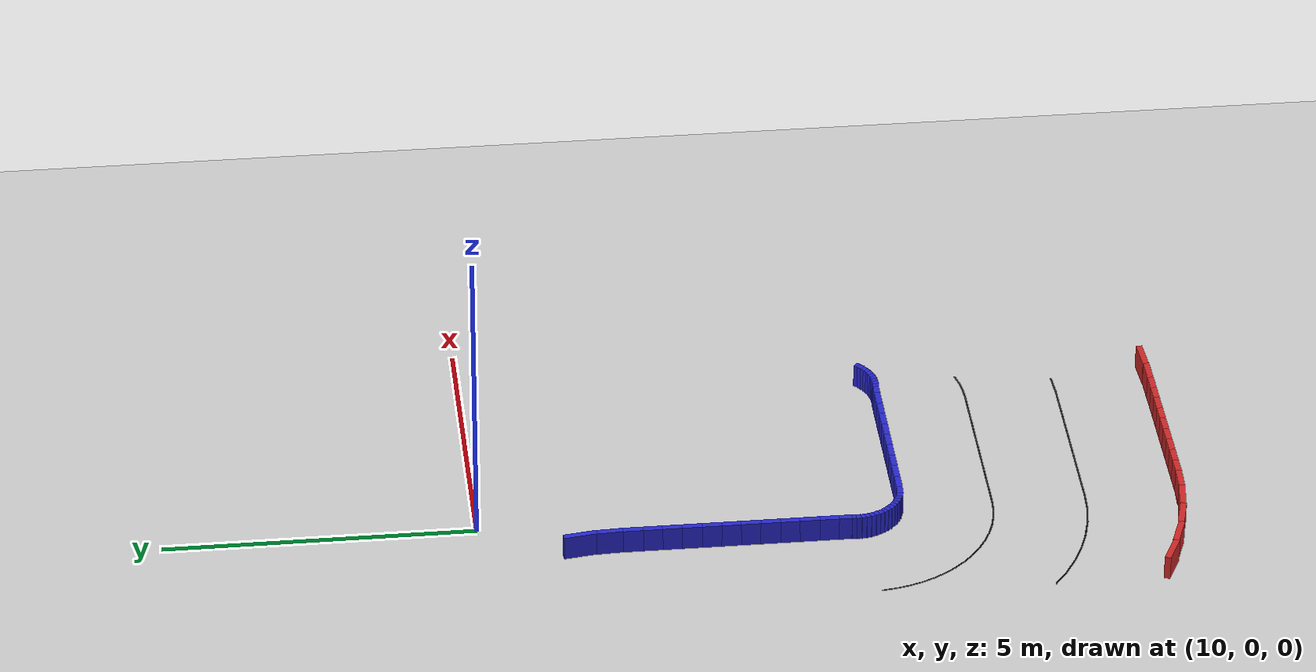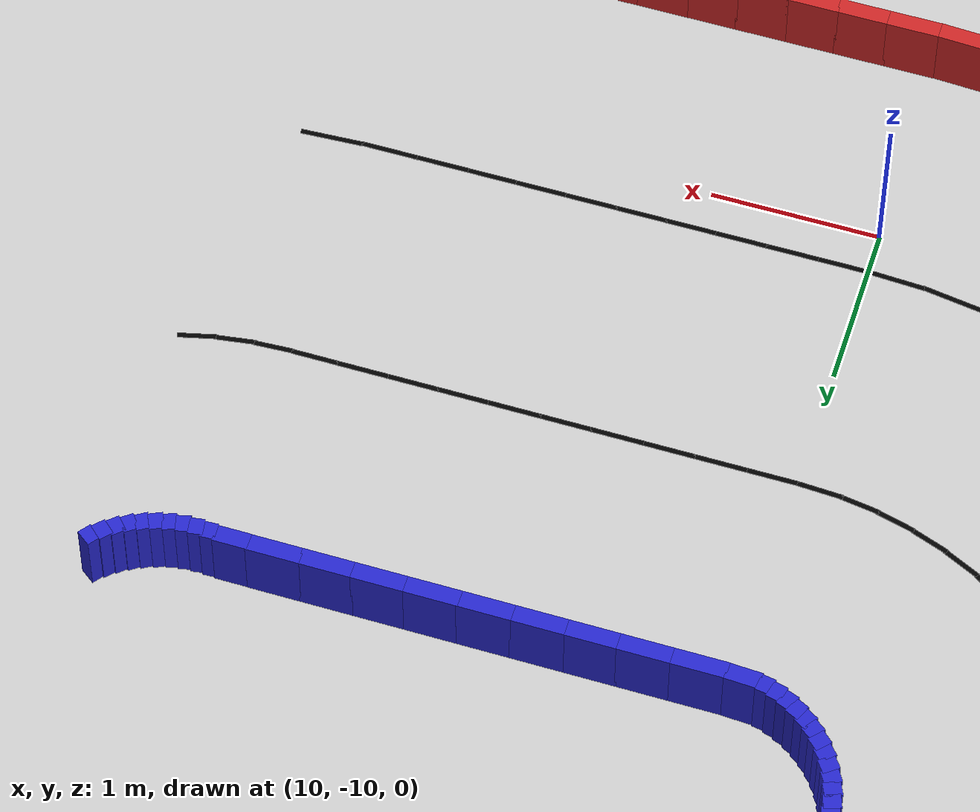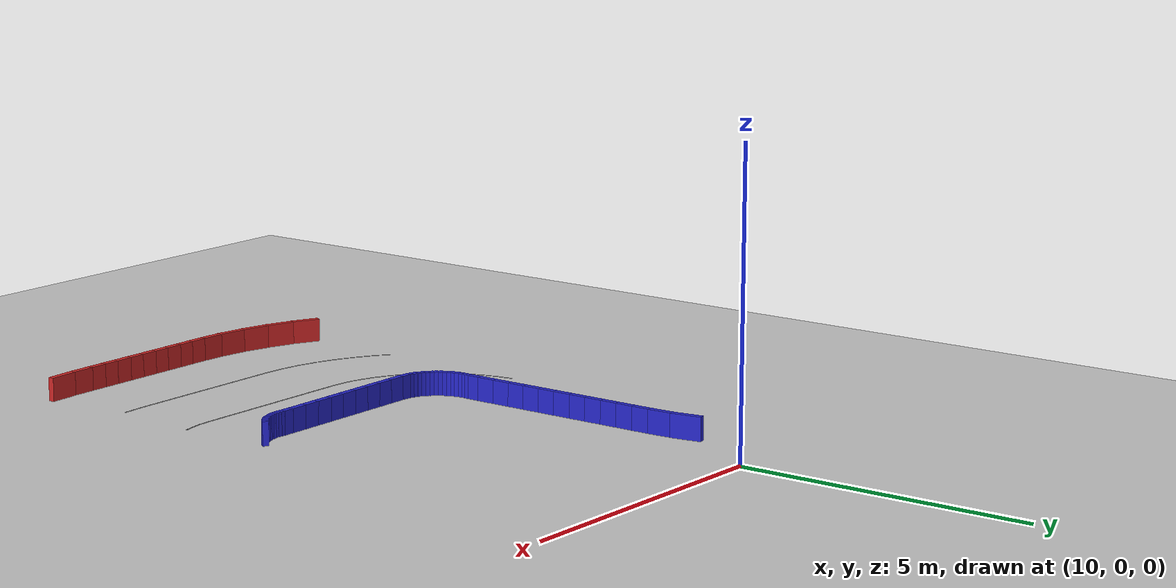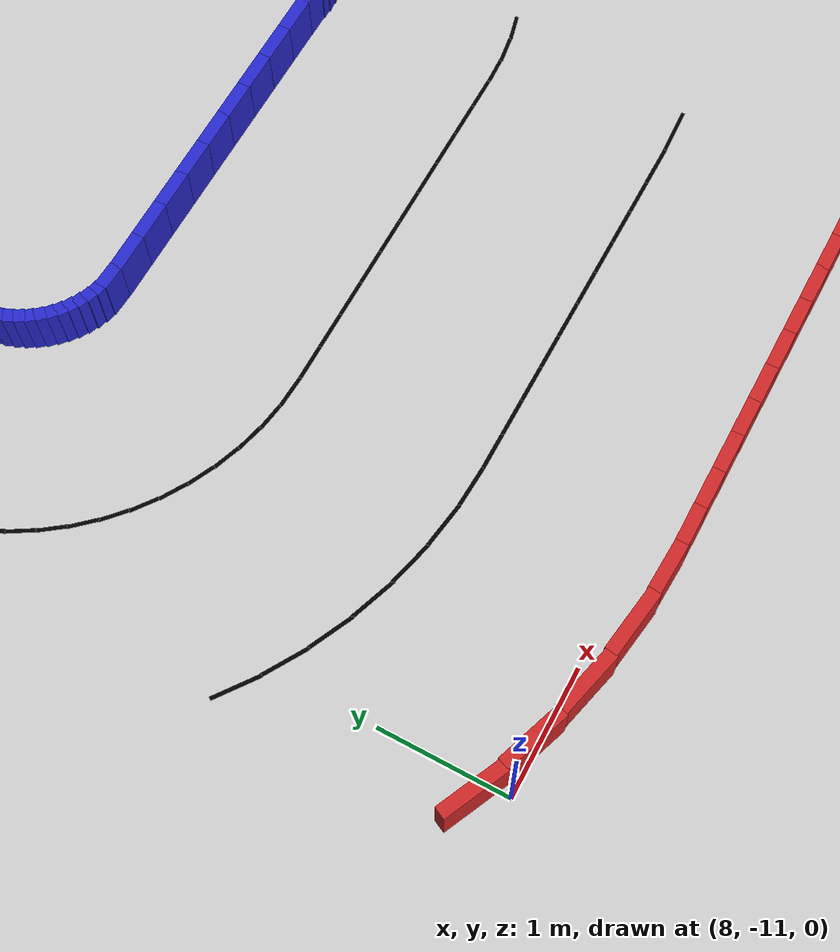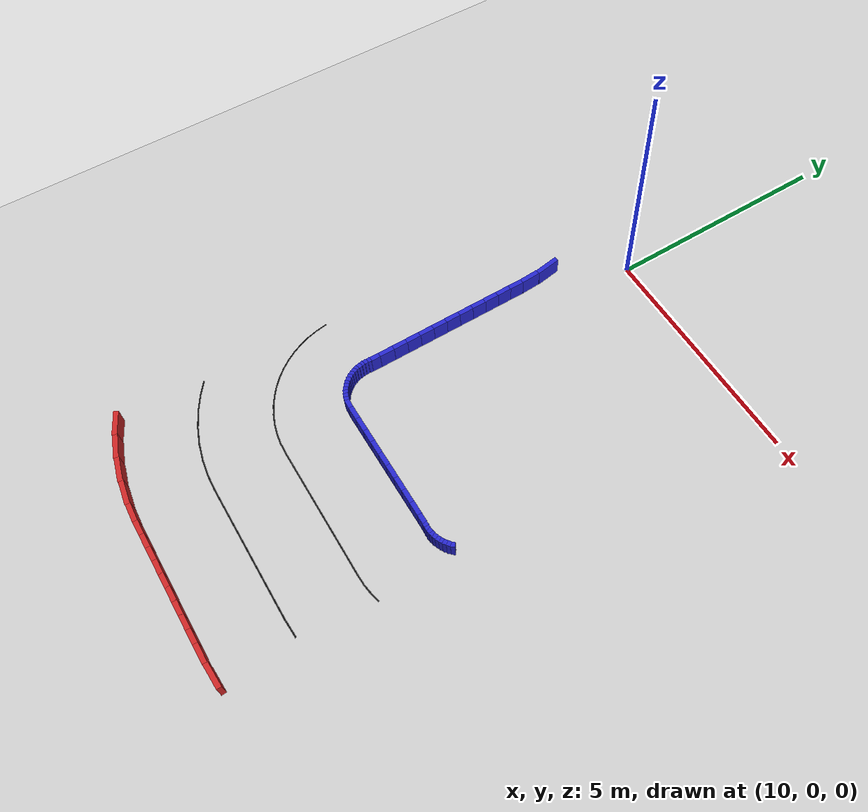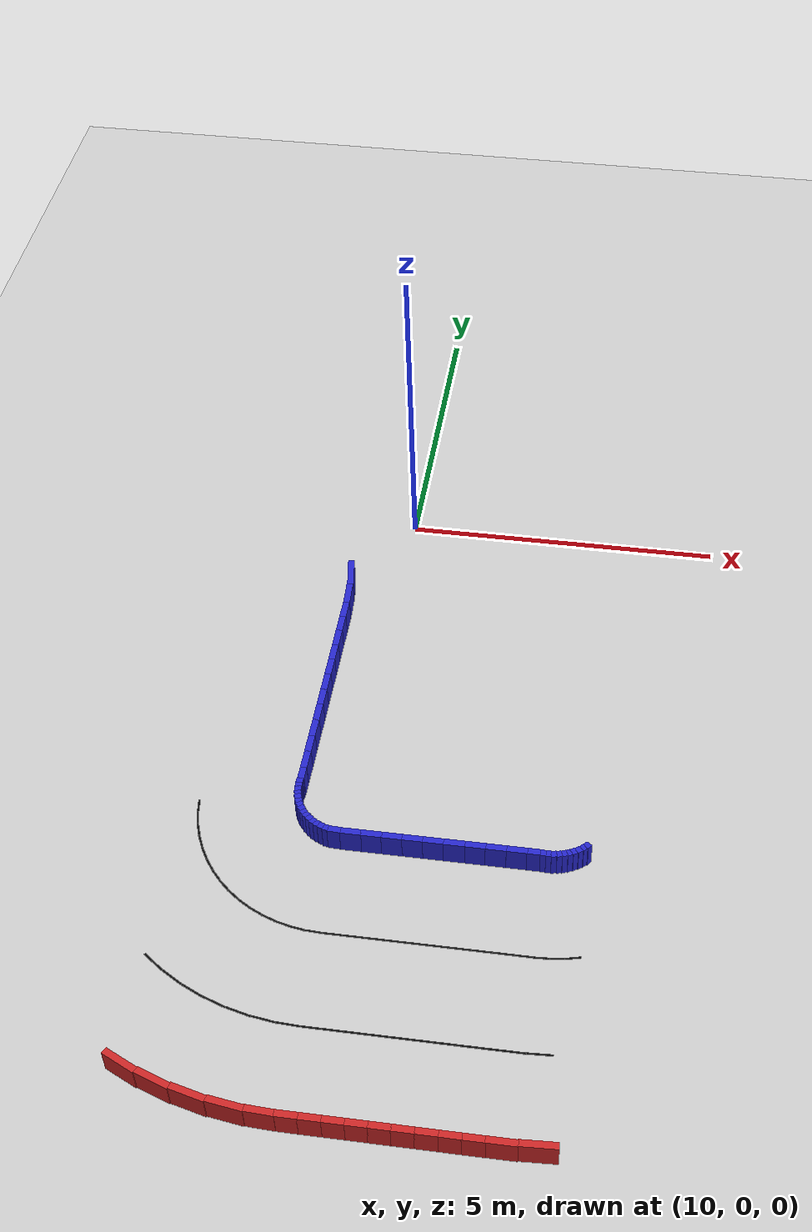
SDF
<sdf version="1.6">
 <world name="3lane_track">
  <include><uri>model://ground_plane</uri></include>
  <include><uri>model://sun</uri></include>
  <model name="iw_103">
   <static>true</static>
   <pose>9.1972 -1.5690 0.200 0 0 -1.4188</pose>
   <link name="l">
    <collision name="c"><geometry><box><size>0.5416 0.1 0.4</size></box></geometry></collision>
    <visual name="v">
     <geometry><box><size>0.5416 0.1 0.4</size></box></geometry>
     <material><ambient>0.15 0.15 0.8 1</ambient><diffuse>0.15 0.15 0.8 1</diffuse></material>
    </visual>
   </link>
  </model>
  <model name="iw_104">
   <static>true</static>
   <pose>9.2409 -2.0413 0.200 0 0 -1.5201</pose>
   <link name="l">
    <collision name="c"><geometry><box><size>0.4279 0.1 0.4</size></box></geometry></collision>
    <visual name="v">
     <geometry><box><size>0.4279 0.1 0.4</size></box></geometry>
     <material><ambient>0.15 0.15 0.8 1</ambient><diffuse>0.15 0.15 0.8 1</diffuse></material>
    </visual>
   </link>
  </model>
  <model name="iw_105">
   <static>true</static>
   <pose>9.2500 -2.4062 0.200 0 0 -1.5708</pose>
   <link name="l">
    <collision name="c"><geometry><box><size>0.3225 0.1 0.4</size></box></geometry></collision>
    <visual name="v">
     <geometry><box><size>0.3225 0.1 0.4</size></box></geometry>
     <material><ambient>0.15 0.15 0.8 1</ambient><diffuse>0.15 0.15 0.8 1</diffuse></material>
    </visual>
   </link>
  </model>
  <model name="iw_106">
   <static>true</static>
   <pose>9.2500 -2.7187 0.200 0 0 -1.5708</pose>
   <link name="l">
    <collision name="c"><geometry><box><size>0.3225 0.1 0.4</size></box></geometry></collision>
    <visual name="v">
     <geometry><box><size>0.3225 0.1 0.4</size></box></geometry>
     <material><ambient>0.15 0.15 0.8 1</ambient><diffuse>0.15 0.15 0.8 1</diffuse></material>
    </visual>
   </link>
  </model>
  <model name="iw_107">
   <static>true</static>
   <pose>9.2500 -3.0312 0.200 0 0 -1.5708</pose>
   <link name="l">
    <collision name="c"><geometry><box><size>0.3225 0.1 0.4</size></box></geometry></collision>
    <visual name="v">
     <geometry><box><size>0.3225 0.1 0.4</size></box></geometry>
     <material><ambient>0.15 0.15 0.8 1</ambient><diffuse>0.15 0.15 0.8 1</diffuse></material>
    </visual>
   </link>
  </model>
  <model name="iw_108">
   <static>true</static>
   <pose>9.2500 -3.3437 0.200 0 0 -1.5708</pose>
   <link name="l">
    <collision name="c"><geometry><box><size>0.3225 0.1 0.4</size></box></geometry></collision>
    <visual name="v">
     <geometry><box><size>0.3225 0.1 0.4</size></box></geometry>
     <material><ambient>0.15 0.15 0.8 1</ambient><diffuse>0.15 0.15 0.8 1</diffuse></material>
    </visual>
   </link>
  </model>
  <model name="iw_109">
   <static>true</static>
   <pose>9.2500 -3.6562 0.200 0 0 -1.5708</pose>
   <link name="l">
    <collision name="c"><geometry><box><size>0.3225 0.1 0.4</size></box></geometry></collision>
    <visual name="v">
     <geometry><box><size>0.3225 0.1 0.4</size></box></geometry>
     <material><ambient>0.15 0.15 0.8 1</ambient><diffuse>0.15 0.15 0.8 1</diffuse></material>
    </visual>
   </link>
  </model>
  <model name="iw_110">
   <static>true</static>
   <pose>9.2500 -3.9688 0.200 0 0 -1.5708</pose>
   <link name="l">
    <collision name="c"><geometry><box><size>0.3225 0.1 0.4</size></box></geometry></collision>
    <visual name="v">
     <geometry><box><size>0.3225 0.1 0.4</size></box></geometry>
     <material><ambient>0.15 0.15 0.8 1</ambient><diffuse>0.15 0.15 0.8 1</diffuse></material>
    </visual>
   </link>
  </model>
  <model name="iw_111">
   <static>true</static>
   <pose>9.2500 -4.2812 0.200 0 0 -1.5708</pose>
   <link name="l">
    <collision name="c"><geometry><box><size>0.3225 0.1 0.4</size></box></geometry></collision>
    <visual name="v">
     <geometry><box><size>0.3225 0.1 0.4</size></box></geometry>
     <material><ambient>0.15 0.15 0.8 1</ambient><diffuse>0.15 0.15 0.8 1</diffuse></material>
    </visual>
   </link>
  </model>
  <model name="iw_112">
   <static>true</static>
   <pose>9.2500 -4.5938 0.200 0 0 -1.5708</pose>
   <link name="l">
    <collision name="c"><geometry><box><size>0.3225 0.1 0.4</size></box></geometry></collision>
    <visual name="v">
     <geometry><box><size>0.3225 0.1 0.4</size></box></geometry>
     <material><ambient>0.15 0.15 0.8 1</ambient><diffuse>0.15 0.15 0.8 1</diffuse></material>
    </visual>
   </link>
  </model>
  <model name="iw_113">
   <static>true</static>
   <pose>9.2500 -4.9062 0.200 0 0 -1.5708</pose>
   <link name="l">
    <collision name="c"><geometry><box><size>0.3225 0.1 0.4</size></box></geometry></collision>
    <visual name="v">
     <geometry><box><size>0.3225 0.1 0.4</size></box></geometry>
     <material><ambient>0.15 0.15 0.8 1</ambient><diffuse>0.15 0.15 0.8 1</diffuse></material>
    </visual>
   </link>
  </model>
  <model name="iw_114">
   <static>true</static>
   <pose>9.2500 -5.2188 0.200 0 0 -1.5708</pose>
   <link name="l">
    <collision name="c"><geometry><box><size>0.3225 0.1 0.4</size></box></geometry></collision>
    <visual name="v">
     <geometry><box><size>0.3225 0.1 0.4</size></box></geometry>
     <material><ambient>0.15 0.15 0.8 1</ambient><diffuse>0.15 0.15 0.8 1</diffuse></material>
    </visual>
   </link>
  </model>
  <model name="iw_115">
   <static>true</static>
   <pose>9.2500 -5.5312 0.200 0 0 -1.5708</pose>
   <link name="l">
    <collision name="c"><geometry><box><size>0.3225 0.1 0.4</size></box></geometry></collision>
    <visual name="v">
     <geometry><box><size>0.3225 0.1 0.4</size></box></geometry>
     <material><ambient>0.15 0.15 0.8 1</ambient><diffuse>0.15 0.15 0.8 1</diffuse></material>
    </visual>
   </link>
  </model>
  <model name="iw_116">
   <static>true</static>
   <pose>9.2486 -5.7885 0.200 0 0 -1.5708</pose>
   <link name="l">
    <collision name="c"><geometry><box><size>0.2121 0.1 0.4</size></box></geometry></collision>
    <visual name="v">
     <geometry><box><size>0.2121 0.1 0.4</size></box></geometry>
     <material><ambient>0.15 0.15 0.8 1</ambient><diffuse>0.15 0.15 0.8 1</diffuse></material>
    </visual>
   </link>
  </model>
  <model name="iw_117">
   <static>true</static>
   <pose>9.2437 -5.9268 0.200 0 0 -1.5217</pose>
   <link name="l">
    <collision name="c"><geometry><box><size>0.0847 0.1 0.4</size></box></geometry></collision>
    <visual name="v">
     <geometry><box><size>0.0847 0.1 0.4</size></box></geometry>
     <material><ambient>0.15 0.15 0.8 1</ambient><diffuse>0.15 0.15 0.8 1</diffuse></material>
    </visual>
   </link>
  </model>
  <model name="iw_118">
   <static>true</static>
   <pose>9.2402 -6.0012 0.200 0 0 -1.4235</pose>
   <link name="l">
    <collision name="c"><geometry><box><size>0.0847 0.1 0.4</size></box></geometry></collision>
    <visual name="v">
     <geometry><box><size>0.0847 0.1 0.4</size></box></geometry>
     <material><ambient>0.15 0.15 0.8 1</ambient><diffuse>0.15 0.15 0.8 1</diffuse></material>
    </visual>
   </link>
  </model>
  <model name="iw_119">
   <static>true</static>
   <pose>9.2439 -6.0757 0.200 0 0 -1.3254</pose>
   <link name="l">
    <collision name="c"><geometry><box><size>0.0847 0.1 0.4</size></box></geometry></collision>
    <visual name="v">
     <geometry><box><size>0.0847 0.1 0.4</size></box></geometry>
     <material><ambient>0.15 0.15 0.8 1</ambient><diffuse>0.15 0.15 0.8 1</diffuse></material>
    </visual>
   </link>
  </model>
  <model name="iw_120">
   <static>true</static>
   <pose>9.2550 -6.1495 0.200 0 0 -1.2272</pose>
   <link name="l">
    <collision name="c"><geometry><box><size>0.0847 0.1 0.4</size></box></geometry></collision>
    <visual name="v">
     <geometry><box><size>0.0847 0.1 0.4</size></box></geometry>
     <material><ambient>0.15 0.15 0.8 1</ambient><diffuse>0.15 0.15 0.8 1</diffuse></material>
    </visual>
   </link>
  </model>
  <model name="iw_121">
   <static>true</static>
   <pose>9.2732 -6.2218 0.200 0 0 -1.1290</pose>
   <link name="l">
    <collision name="c"><geometry><box><size>0.0847 0.1 0.4</size></box></geometry></collision>
    <visual name="v">
     <geometry><box><size>0.0847 0.1 0.4</size></box></geometry>
     <material><ambient>0.15 0.15 0.8 1</ambient><diffuse>0.15 0.15 0.8 1</diffuse></material>
    </visual>
   </link>
  </model>
  <model name="iw_122">
   <static>true</static>
   <pose>9.2985 -6.2919 0.200 0 0 -1.0308</pose>
   <link name="l">
    <collision name="c"><geometry><box><size>0.0847 0.1 0.4</size></box></geometry></collision>
    <visual name="v">
     <geometry><box><size>0.0847 0.1 0.4</size></box></geometry>
     <material><ambient>0.15 0.15 0.8 1</ambient><diffuse>0.15 0.15 0.8 1</diffuse></material>
    </visual>
   </link>
  </model>
  <model name="iw_123">
   <static>true</static>
   <pose>9.3305 -6.3593 0.200 0 0 -0.9327</pose>
   <link name="l">
    <collision name="c"><geometry><box><size>0.0847 0.1 0.4</size></box></geometry></collision>
    <visual name="v">
     <geometry><box><size>0.0847 0.1 0.4</size></box></geometry>
     <material><ambient>0.15 0.15 0.8 1</ambient><diffuse>0.15 0.15 0.8 1</diffuse></material>
    </visual>
   </link>
  </model>
  <model name="iw_124">
   <static>true</static>
   <pose>9.3689 -6.4232 0.200 0 0 -0.8345</pose>
   <link name="l">
    <collision name="c"><geometry><box><size>0.0847 0.1 0.4</size></box></geometry></collision>
    <visual name="v">
     <geometry><box><size>0.0847 0.1 0.4</size></box></geometry>
     <material><ambient>0.15 0.15 0.8 1</ambient><diffuse>0.15 0.15 0.8 1</diffuse></material>
    </visual>
   </link>
  </model>
  <model name="iw_125">
   <static>true</static>
   <pose>9.4134 -6.4830 0.200 0 0 -0.7363</pose>
   <link name="l">
    <collision name="c"><geometry><box><size>0.0847 0.1 0.4</size></box></geometry></collision>
    <visual name="v">
     <geometry><box><size>0.0847 0.1 0.4</size></box></geometry>
     <material><ambient>0.15 0.15 0.8 1</ambient><diffuse>0.15 0.15 0.8 1</diffuse></material>
    </visual>
   </link>
  </model>
  <model name="iw_126">
   <static>true</static>
   <pose>9.4636 -6.5382 0.200 0 0 -0.6381</pose>
   <link name="l">
    <collision name="c"><geometry><box><size>0.0847 0.1 0.4</size></box></geometry></collision>
    <visual name="v">
     <geometry><box><size>0.0847 0.1 0.4</size></box></geometry>
     <material><ambient>0.15 0.15 0.8 1</ambient><diffuse>0.15 0.15 0.8 1</diffuse></material>
    </visual>
   </link>
  </model>
  <model name="iw_127">
   <static>true</static>
   <pose>9.5189 -6.5882 0.200 0 0 -0.5400</pose>
   <link name="l">
    <collision name="c"><geometry><box><size>0.0847 0.1 0.4</size></box></geometry></collision>
    <visual name="v">
     <geometry><box><size>0.0847 0.1 0.4</size></box></geometry>
     <material><ambient>0.15 0.15 0.8 1</ambient><diffuse>0.15 0.15 0.8 1</diffuse></material>
    </visual>
   </link>
  </model>
  <model name="iw_128">
   <static>true</static>
   <pose>9.5789 -6.6325 0.200 0 0 -0.4418</pose>
   <link name="l">
    <collision name="c"><geometry><box><size>0.0847 0.1 0.4</size></box></geometry></collision>
    <visual name="v">
     <geometry><box><size>0.0847 0.1 0.4</size></box></geometry>
     <material><ambient>0.15 0.15 0.8 1</ambient><diffuse>0.15 0.15 0.8 1</diffuse></material>
    </visual>
   </link>
  </model>
  <model name="iw_129">
   <static>true</static>
   <pose>9.6429 -6.6707 0.200 0 0 -0.3436</pose>
   <link name="l">
    <collision name="c"><geometry><box><size>0.0847 0.1 0.4</size></box></geometry></collision>
    <visual name="v">
     <geometry><box><size>0.0847 0.1 0.4</size></box></geometry>
     <material><ambient>0.15 0.15 0.8 1</ambient><diffuse>0.15 0.15 0.8 1</diffuse></material>
    </visual>
   </link>
  </model>
  <model name="iw_130">
   <static>true</static>
   <pose>9.7104 -6.7025 0.200 0 0 -0.2454</pose>
   <link name="l">
    <collision name="c"><geometry><box><size>0.0847 0.1 0.4</size></box></geometry></collision>
    <visual name="v">
     <geometry><box><size>0.0847 0.1 0.4</size></box></geometry>
     <material><ambient>0.15 0.15 0.8 1</ambient><diffuse>0.15 0.15 0.8 1</diffuse></material>
    </visual>
   </link>
  </model>
  <model name="iw_131">
   <static>true</static>
   <pose>9.7806 -6.7275 0.200 0 0 -0.1473</pose>
   <link name="l">
    <collision name="c"><geometry><box><size>0.0847 0.1 0.4</size></box></geometry></collision>
    <visual name="v">
     <geometry><box><size>0.0847 0.1 0.4</size></box></geometry>
     <material><ambient>0.15 0.15 0.8 1</ambient><diffuse>0.15 0.15 0.8 1</diffuse></material>
    </visual>
   </link>
  </model>
  <model name="iw_132">
   <static>true</static>
   <pose>9.9082 -6.7441 0.200 0 0 -0.0491</pose>
   <link name="l">
    <collision name="c"><geometry><box><size>0.1940 0.1 0.4</size></box></geometry></collision>
    <visual name="v">
     <geometry><box><size>0.1940 0.1 0.4</size></box></geometry>
     <material><ambient>0.15 0.15 0.8 1</ambient><diffuse>0.15 0.15 0.8 1</diffuse></material>
    </visual>
   </link>
  </model>
  <model name="iw_133">
   <static>true</static>
   <pose>10.1500 -6.7500 0.200 0 0 0.0000</pose>
   <link name="l">
    <collision name="c"><geometry><box><size>0.3100 0.1 0.4</size></box></geometry></collision>
    <visual name="v">
     <geometry><box><size>0.3100 0.1 0.4</size></box></geometry>
     <material><ambient>0.15 0.15 0.8 1</ambient><diffuse>0.15 0.15 0.8 1</diffuse></material>
    </visual>
   </link>
  </model>
  <model name="iw_134">
   <static>true</static>
   <pose>10.4500 -6.7500 0.200 0 0 0.0000</pose>
   <link name="l">
    <collision name="c"><geometry><box><size>0.3100 0.1 0.4</size></box></geometry></collision>
    <visual name="v">
     <geometry><box><size>0.3100 0.1 0.4</size></box></geometry>
     <material><ambient>0.15 0.15 0.8 1</ambient><diffuse>0.15 0.15 0.8 1</diffuse></material>
    </visual>
   </link>
  </model>
  <model name="iw_135">
   <static>true</static>
   <pose>10.7500 -6.7500 0.200 0 0 0.0000</pose>
   <link name="l">
    <collision name="c"><geometry><box><size>0.3100 0.1 0.4</size></box></geometry></collision>
    <visual name="v">
     <geometry><box><size>0.3100 0.1 0.4</size></box></geometry>
     <material><ambient>0.15 0.15 0.8 1</ambient><diffuse>0.15 0.15 0.8 1</diffuse></material>
    </visual>
   </link>
  </model>
  <model name="iw_136">
   <static>true</static>
   <pose>11.0500 -6.7500 0.200 0 0 0.0000</pose>
   <link name="l">
    <collision name="c"><geometry><box><size>0.3100 0.1 0.4</size></box></geometry></collision>
    <visual name="v">
     <geometry><box><size>0.3100 0.1 0.4</size></box></geometry>
     <material><ambient>0.15 0.15 0.8 1</ambient><diffuse>0.15 0.15 0.8 1</diffuse></material>
    </visual>
   </link>
  </model>
  <model name="iw_137">
   <static>true</static>
   <pose>11.3500 -6.7500 0.200 0 0 0.0000</pose>
   <link name="l">
    <collision name="c"><geometry><box><size>0.3100 0.1 0.4</size></box></geometry></collision>
    <visual name="v">
     <geometry><box><size>0.3100 0.1 0.4</size></box></geometry>
     <material><ambient>0.15 0.15 0.8 1</ambient><diffuse>0.15 0.15 0.8 1</diffuse></material>
    </visual>
   </link>
  </model>
  <model name="iw_138">
   <static>true</static>
   <pose>11.6500 -6.7500 0.200 0 0 0.0000</pose>
   <link name="l">
    <collision name="c"><geometry><box><size>0.3100 0.1 0.4</size></box></geometry></collision>
    <visual name="v">
     <geometry><box><size>0.3100 0.1 0.4</size></box></geometry>
     <material><ambient>0.15 0.15 0.8 1</ambient><diffuse>0.15 0.15 0.8 1</diffuse></material>
    </visual>
   </link>
  </model>
  <model name="iw_139">
   <static>true</static>
   <pose>11.9500 -6.7500 0.200 0 0 0.0000</pose>
   <link name="l">
    <collision name="c"><geometry><box><size>0.3100 0.1 0.4</size></box></geometry></collision>
    <visual name="v">
     <geometry><box><size>0.3100 0.1 0.4</size></box></geometry>
     <material><ambient>0.15 0.15 0.8 1</ambient><diffuse>0.15 0.15 0.8 1</diffuse></material>
    </visual>
   </link>
  </model>
  <model name="iw_140">
   <static>true</static>
   <pose>12.2500 -6.7500 0.200 0 0 0.0000</pose>
   <link name="l">
    <collision name="c"><geometry><box><size>0.3100 0.1 0.4</size></box></geometry></collision>
    <visual name="v">
     <geometry><box><size>0.3100 0.1 0.4</size></box></geometry>
     <material><ambient>0.15 0.15 0.8 1</ambient><diffuse>0.15 0.15 0.8 1</diffuse></material>
    </visual>
   </link>
  </model>
  <model name="iw_141">
   <static>true</static>
   <pose>12.5500 -6.7500 0.200 0 0 0.0000</pose>
   <link name="l">
    <collision name="c"><geometry><box><size>0.3100 0.1 0.4</size></box></geometry></collision>
    <visual name="v">
     <geometry><box><size>0.3100 0.1 0.4</size></box></geometry>
     <material><ambient>0.15 0.15 0.8 1</ambient><diffuse>0.15 0.15 0.8 1</diffuse></material>
    </visual>
   </link>
  </model>
  <model name="iw_142">
   <static>true</static>
   <pose>12.7948 -6.7514 0.200 0 0 0.0000</pose>
   <link name="l">
    <collision name="c"><geometry><box><size>0.1996 0.1 0.4</size></box></geometry></collision>
    <visual name="v">
     <geometry><box><size>0.1996 0.1 0.4</size></box></geometry>
     <material><ambient>0.15 0.15 0.8 1</ambient><diffuse>0.15 0.15 0.8 1</diffuse></material>
    </visual>
   </link>
  </model>
  <model name="iw_143">
   <static>true</static>
   <pose>12.9268 -6.7563 0.200 0 0 0.0491</pose>
   <link name="l">
    <collision name="c"><geometry><box><size>0.0847 0.1 0.4</size></box></geometry></collision>
    <visual name="v">
     <geometry><box><size>0.0847 0.1 0.4</size></box></geometry>
     <material><ambient>0.15 0.15 0.8 1</ambient><diffuse>0.15 0.15 0.8 1</diffuse></material>
    </visual>
   </link>
  </model>
  <model name="iw_144">
   <static>true</static>
   <pose>13.0012 -6.7598 0.200 0 0 0.1473</pose>
   <link name="l">
    <collision name="c"><geometry><box><size>0.0847 0.1 0.4</size></box></geometry></collision>
    <visual name="v">
     <geometry><box><size>0.0847 0.1 0.4</size></box></geometry>
     <material><ambient>0.15 0.15 0.8 1</ambient><diffuse>0.15 0.15 0.8 1</diffuse></material>
    </visual>
   </link>
  </model>
  <model name="iw_145">
   <static>true</static>
   <pose>13.0757 -6.7561 0.200 0 0 0.2454</pose>
   <link name="l">
    <collision name="c"><geometry><box><size>0.0847 0.1 0.4</size></box></geometry></collision>
    <visual name="v">
     <geometry><box><size>0.0847 0.1 0.4</size></box></geometry>
     <material><ambient>0.15 0.15 0.8 1</ambient><diffuse>0.15 0.15 0.8 1</diffuse></material>
    </visual>
   </link>
  </model>
  <model name="iw_146">
   <static>true</static>
   <pose>13.1495 -6.7450 0.200 0 0 0.3436</pose>
   <link name="l">
    <collision name="c"><geometry><box><size>0.0847 0.1 0.4</size></box></geometry></collision>
    <visual name="v">
     <geometry><box><size>0.0847 0.1 0.4</size></box></geometry>
     <material><ambient>0.15 0.15 0.8 1</ambient><diffuse>0.15 0.15 0.8 1</diffuse></material>
    </visual>
   </link>
  </model>
  <model name="iw_147">
   <static>true</static>
   <pose>13.2218 -6.7268 0.200 0 0 0.4418</pose>
   <link name="l">
    <collision name="c"><geometry><box><size>0.0847 0.1 0.4</size></box></geometry></collision>
    <visual name="v">
     <geometry><box><size>0.0847 0.1 0.4</size></box></geometry>
     <material><ambient>0.15 0.15 0.8 1</ambient><diffuse>0.15 0.15 0.8 1</diffuse></material>
    </visual>
   </link>
  </model>
  <model name="iw_148">
   <static>true</static>
   <pose>13.2919 -6.7015 0.200 0 0 0.5400</pose>
   <link name="l">
    <collision name="c"><geometry><box><size>0.0847 0.1 0.4</size></box></geometry></collision>
    <visual name="v">
     <geometry><box><size>0.0847 0.1 0.4</size></box></geometry>
     <material><ambient>0.15 0.15 0.8 1</ambient><diffuse>0.15 0.15 0.8 1</diffuse></material>
    </visual>
   </link>
  </model>
  <model name="iw_149">
   <static>true</static>
   <pose>13.3593 -6.6695 0.200 0 0 0.6381</pose>
   <link name="l">
    <collision name="c"><geometry><box><size>0.0847 0.1 0.4</size></box></geometry></collision>
    <visual name="v">
     <geometry><box><size>0.0847 0.1 0.4</size></box></geometry>
     <material><ambient>0.15 0.15 0.8 1</ambient><diffuse>0.15 0.15 0.8 1</diffuse></material>
    </visual>
   </link>
  </model>
  <model name="iw_150">
   <static>true</static>
   <pose>13.4232 -6.6311 0.200 0 0 0.7363</pose>
   <link name="l">
    <collision name="c"><geometry><box><size>0.0847 0.1 0.4</size></box></geometry></collision>
    <visual name="v">
     <geometry><box><size>0.0847 0.1 0.4</size></box></geometry>
     <material><ambient>0.15 0.15 0.8 1</ambient><diffuse>0.15 0.15 0.8 1</diffuse></material>
    </visual>
   </link>
  </model>
  <model name="iw_151">
   <static>true</static>
   <pose>13.4830 -6.5866 0.200 0 0 0.8345</pose>
   <link name="l">
    <collision name="c"><geometry><box><size>0.0847 0.1 0.4</size></box></geometry></collision>
    <visual name="v">
     <geometry><box><size>0.0847 0.1 0.4</size></box></geometry>
     <material><ambient>0.15 0.15 0.8 1</ambient><diffuse>0.15 0.15 0.8 1</diffuse></material>
    </visual>
   </link>
  </model>
  <model name="iw_152">
   <static>true</static>
   <pose>13.5382 -6.5364 0.200 0 0 0.9327</pose>
   <link name="l">
    <collision name="c"><geometry><box><size>0.0847 0.1 0.4</size></box></geometry></collision>
    <visual name="v">
     <geometry><box><size>0.0847 0.1 0.4</size></box></geometry>
     <material><ambient>0.15 0.15 0.8 1</ambient><diffuse>0.15 0.15 0.8 1</diffuse></material>
    </visual>
   </link>
  </model>
  <model name="ow_128">
   <static>true</static>
   <pose>7.8589 -10.7849 0.200 0 0 -0.4418</pose>
   <link name="l">
    <collision name="c"><geometry><box><size>0.5251 0.1 0.4</size></box></geometry></collision>
    <visual name="v">
     <geometry><box><size>0.5251 0.1 0.4</size></box></geometry>
     <material><ambient>0.8 0.15 0.15 1</ambient><diffuse>0.8 0.15 0.15 1</diffuse></material>
    </visual>
   </link>
  </model>
  <model name="ow_129">
   <static>true</static>
   <pose>8.3382 -10.9718 0.200 0 0 -0.3436</pose>
   <link name="l">
    <collision name="c"><geometry><box><size>0.5251 0.1 0.4</size></box></geometry></collision>
    <visual name="v">
     <geometry><box><size>0.5251 0.1 0.4</size></box></geometry>
     <material><ambient>0.8 0.15 0.15 1</ambient><diffuse>0.8 0.15 0.15 1</diffuse></material>
    </visual>
   </link>
  </model>
  <model name="ow_130">
   <static>true</static>
   <pose>8.8335 -11.1107 0.200 0 0 -0.2454</pose>
   <link name="l">
    <collision name="c"><geometry><box><size>0.5251 0.1 0.4</size></box></geometry></collision>
    <visual name="v">
     <geometry><box><size>0.5251 0.1 0.4</size></box></geometry>
     <material><ambient>0.8 0.15 0.15 1</ambient><diffuse>0.8 0.15 0.15 1</diffuse></material>
    </visual>
   </link>
  </model>
  <model name="ow_131">
   <static>true</static>
   <pose>9.3401 -11.2004 0.200 0 0 -0.1473</pose>
   <link name="l">
    <collision name="c"><geometry><box><size>0.5251 0.1 0.4</size></box></geometry></collision>
    <visual name="v">
     <geometry><box><size>0.5251 0.1 0.4</size></box></geometry>
     <material><ambient>0.8 0.15 0.15 1</ambient><diffuse>0.8 0.15 0.15 1</diffuse></material>
    </visual>
   </link>
  </model>
  <model name="ow_132">
   <static>true</static>
   <pose>9.7978 -11.2414 0.200 0 0 -0.0491</pose>
   <link name="l">
    <collision name="c"><geometry><box><size>0.4148 0.1 0.4</size></box></geometry></collision>
    <visual name="v">
     <geometry><box><size>0.4148 0.1 0.4</size></box></geometry>
     <material><ambient>0.8 0.15 0.15 1</ambient><diffuse>0.8 0.15 0.15 1</diffuse></material>
    </visual>
   </link>
  </model>
  <model name="ow_133">
   <static>true</static>
   <pose>10.1500 -11.2500 0.200 0 0 0.0000</pose>
   <link name="l">
    <collision name="c"><geometry><box><size>0.3100 0.1 0.4</size></box></geometry></collision>
    <visual name="v">
     <geometry><box><size>0.3100 0.1 0.4</size></box></geometry>
     <material><ambient>0.8 0.15 0.15 1</ambient><diffuse>0.8 0.15 0.15 1</diffuse></material>
    </visual>
   </link>
  </model>
  <model name="ow_134">
   <static>true</static>
   <pose>10.4500 -11.2500 0.200 0 0 0.0000</pose>
   <link name="l">
    <collision name="c"><geometry><box><size>0.3100 0.1 0.4</size></box></geometry></collision>
    <visual name="v">
     <geometry><box><size>0.3100 0.1 0.4</size></box></geometry>
     <material><ambient>0.8 0.15 0.15 1</ambient><diffuse>0.8 0.15 0.15 1</diffuse></material>
    </visual>
   </link>
  </model>
  <model name="ow_135">
   <static>true</static>
   <pose>10.7500 -11.2500 0.200 0 0 0.0000</pose>
   <link name="l">
    <collision name="c"><geometry><box><size>0.3100 0.1 0.4</size></box></geometry></collision>
    <visual name="v">
     <geometry><box><size>0.3100 0.1 0.4</size></box></geometry>
     <material><ambient>0.8 0.15 0.15 1</ambient><diffuse>0.8 0.15 0.15 1</diffuse></material>
    </visual>
   </link>
  </model>
  <model name="ow_136">
   <static>true</static>
   <pose>11.0500 -11.2500 0.200 0 0 0.0000</pose>
   <link name="l">
    <collision name="c"><geometry><box><size>0.3100 0.1 0.4</size></box></geometry></collision>
    <visual name="v">
     <geometry><box><size>0.3100 0.1 0.4</size></box></geometry>
     <material><ambient>0.8 0.15 0.15 1</ambient><diffuse>0.8 0.15 0.15 1</diffuse></material>
    </visual>
   </link>
  </model>
  <model name="ow_137">
   <static>true</static>
   <pose>11.3500 -11.2500 0.200 0 0 0.0000</pose>
   <link name="l">
    <collision name="c"><geometry><box><size>0.3100 0.1 0.4</size></box></geometry></collision>
    <visual name="v">
     <geometry><box><size>0.3100 0.1 0.4</size></box></geometry>
     <material><ambient>0.8 0.15 0.15 1</ambient><diffuse>0.8 0.15 0.15 1</diffuse></material>
    </visual>
   </link>
  </model>
  <model name="ow_138">
   <static>true</static>
   <pose>11.6500 -11.2500 0.200 0 0 0.0000</pose>
   <link name="l">
    <collision name="c"><geometry><box><size>0.3100 0.1 0.4</size></box></geometry></collision>
    <visual name="v">
     <geometry><box><size>0.3100 0.1 0.4</size></box></geometry>
     <material><ambient>0.8 0.15 0.15 1</ambient><diffuse>0.8 0.15 0.15 1</diffuse></material>
    </visual>
   </link>
  </model>
  <model name="ow_139">
   <static>true</static>
   <pose>11.9500 -11.2500 0.200 0 0 0.0000</pose>
   <link name="l">
    <collision name="c"><geometry><box><size>0.3100 0.1 0.4</size></box></geometry></collision>
    <visual name="v">
     <geometry><box><size>0.3100 0.1 0.4</size></box></geometry>
     <material><ambient>0.8 0.15 0.15 1</ambient><diffuse>0.8 0.15 0.15 1</diffuse></material>
    </visual>
   </link>
  </model>
  <model name="ow_140">
   <static>true</static>
   <pose>12.2500 -11.2500 0.200 0 0 0.0000</pose>
   <link name="l">
    <collision name="c"><geometry><box><size>0.3100 0.1 0.4</size></box></geometry></collision>
    <visual name="v">
     <geometry><box><size>0.3100 0.1 0.4</size></box></geometry>
     <material><ambient>0.8 0.15 0.15 1</ambient><diffuse>0.8 0.15 0.15 1</diffuse></material>
    </visual>
   </link>
  </model>
  <model name="ow_141">
   <static>true</static>
   <pose>12.5500 -11.2500 0.200 0 0 0.0000</pose>
   <link name="l">
    <collision name="c"><geometry><box><size>0.3100 0.1 0.4</size></box></geometry></collision>
    <visual name="v">
     <geometry><box><size>0.3100 0.1 0.4</size></box></geometry>
     <material><ambient>0.8 0.15 0.15 1</ambient><diffuse>0.8 0.15 0.15 1</diffuse></material>
    </visual>
   </link>
  </model>
  <model name="ow_142">
   <static>true</static>
   <pose>12.9052 -11.2486 0.200 0 0 0.0000</pose>
   <link name="l">
    <collision name="c"><geometry><box><size>0.4204 0.1 0.4</size></box></geometry></collision>
    <visual name="v">
     <geometry><box><size>0.4204 0.1 0.4</size></box></geometry>
     <material><ambient>0.8 0.15 0.15 1</ambient><diffuse>0.8 0.15 0.15 1</diffuse></material>
    </visual>
   </link>
  </model>
  <model name="ow_143">
   <static>true</static>
   <pose>13.3673 -11.2292 0.200 0 0 0.0491</pose>
   <link name="l">
    <collision name="c"><geometry><box><size>0.5251 0.1 0.4</size></box></geometry></collision>
    <visual name="v">
     <geometry><box><size>0.5251 0.1 0.4</size></box></geometry>
     <material><ambient>0.8 0.15 0.15 1</ambient><diffuse>0.8 0.15 0.15 1</diffuse></material>
    </visual>
   </link>
  </model>
  <model name="line_236">
   <static>true</static>
   <pose>7.7707 -6.2935 0.002 0 0 -1.4235</pose>
   <link name="l">
    <visual name="v">
     <geometry><box><size>0.2309 0.03 0.002</size></box></geometry>
     <material><ambient>0 0 0 1</ambient><diffuse>0 0 0 1</diffuse></material>
    </visual>
   </link>
  </model>
  <model name="line_238">
   <static>true</static>
   <pose>7.8103 -6.5106 0.002 0 0 -1.3254</pose>
   <link name="l">
    <visual name="v">
     <geometry><box><size>0.2309 0.03 0.002</size></box></geometry>
     <material><ambient>0 0 0 1</ambient><diffuse>0 0 0 1</diffuse></material>
    </visual>
   </link>
  </model>
  <model name="line_240">
   <static>true</static>
   <pose>7.8708 -6.7228 0.002 0 0 -1.2272</pose>
   <link name="l">
    <visual name="v">
     <geometry><box><size>0.2309 0.03 0.002</size></box></geometry>
     <material><ambient>0 0 0 1</ambient><diffuse>0 0 0 1</diffuse></material>
    </visual>
   </link>
  </model>
  <model name="line_242">
   <static>true</static>
   <pose>7.9519 -6.9280 0.002 0 0 -1.1290</pose>
   <link name="l">
    <visual name="v">
     <geometry><box><size>0.2309 0.03 0.002</size></box></geometry>
     <material><ambient>0 0 0 1</ambient><diffuse>0 0 0 1</diffuse></material>
    </visual>
   </link>
  </model>
  <model name="line_244">
   <static>true</static>
   <pose>8.0528 -7.1243 0.002 0 0 -1.0308</pose>
   <link name="l">
    <visual name="v">
     <geometry><box><size>0.2309 0.03 0.002</size></box></geometry>
     <material><ambient>0 0 0 1</ambient><diffuse>0 0 0 1</diffuse></material>
    </visual>
   </link>
  </model>
  <model name="line_246">
   <static>true</static>
   <pose>8.1723 -7.3097 0.002 0 0 -0.9327</pose>
   <link name="l">
    <visual name="v">
     <geometry><box><size>0.2309 0.03 0.002</size></box></geometry>
     <material><ambient>0 0 0 1</ambient><diffuse>0 0 0 1</diffuse></material>
    </visual>
   </link>
  </model>
  <model name="line_248">
   <static>true</static>
   <pose>8.3095 -7.4826 0.002 0 0 -0.8345</pose>
   <link name="l">
    <visual name="v">
     <geometry><box><size>0.2309 0.03 0.002</size></box></geometry>
     <material><ambient>0 0 0 1</ambient><diffuse>0 0 0 1</diffuse></material>
    </visual>
   </link>
  </model>
  <model name="line_250">
   <static>true</static>
   <pose>8.4630 -7.6411 0.002 0 0 -0.7363</pose>
   <link name="l">
    <visual name="v">
     <geometry><box><size>0.2309 0.03 0.002</size></box></geometry>
     <material><ambient>0 0 0 1</ambient><diffuse>0 0 0 1</diffuse></material>
    </visual>
   </link>
  </model>
  <model name="line_252">
   <static>true</static>
   <pose>8.6312 -7.7839 0.002 0 0 -0.6381</pose>
   <link name="l">
    <visual name="v">
     <geometry><box><size>0.2309 0.03 0.002</size></box></geometry>
     <material><ambient>0 0 0 1</ambient><diffuse>0 0 0 1</diffuse></material>
    </visual>
   </link>
  </model>
  <model name="line_253">
   <static>true</static>
   <pose>7.7989 -9.0296 0.002 0 0 -0.6381</pose>
   <link name="l">
    <visual name="v">
     <geometry><box><size>0.3779 0.03 0.002</size></box></geometry>
     <material><ambient>0 0 0 1</ambient><diffuse>0 0 0 1</diffuse></material>
    </visual>
   </link>
  </model>
  <model name="line_254">
   <static>true</static>
   <pose>8.8127 -7.9094 0.002 0 0 -0.5400</pose>
   <link name="l">
    <visual name="v">
     <geometry><box><size>0.2309 0.03 0.002</size></box></geometry>
     <material><ambient>0 0 0 1</ambient><diffuse>0 0 0 1</diffuse></material>
    </visual>
   </link>
  </model>
  <model name="line_255">
   <static>true</static>
   <pose>8.1064 -9.2307 0.002 0 0 -0.5400</pose>
   <link name="l">
    <visual name="v">
     <geometry><box><size>0.3779 0.03 0.002</size></box></geometry>
     <material><ambient>0 0 0 1</ambient><diffuse>0 0 0 1</diffuse></material>
    </visual>
   </link>
  </model>
  <model name="line_256">
   <static>true</static>
   <pose>9.0055 -8.0166 0.002 0 0 -0.4418</pose>
   <link name="l">
    <visual name="v">
     <geometry><box><size>0.2309 0.03 0.002</size></box></geometry>
     <material><ambient>0 0 0 1</ambient><diffuse>0 0 0 1</diffuse></material>
    </visual>
   </link>
  </model>
  <model name="line_257">
   <static>true</static>
   <pose>8.4322 -9.4008 0.002 0 0 -0.4418</pose>
   <link name="l">
    <visual name="v">
     <geometry><box><size>0.3779 0.03 0.002</size></box></geometry>
     <material><ambient>0 0 0 1</ambient><diffuse>0 0 0 1</diffuse></material>
    </visual>
   </link>
  </model>
  <model name="line_258">
   <static>true</static>
   <pose>9.2080 -8.1044 0.002 0 0 -0.3436</pose>
   <link name="l">
    <visual name="v">
     <geometry><box><size>0.2309 0.03 0.002</size></box></geometry>
     <material><ambient>0 0 0 1</ambient><diffuse>0 0 0 1</diffuse></material>
    </visual>
   </link>
  </model>
  <model name="line_259">
   <static>true</static>
   <pose>8.7731 -9.5381 0.002 0 0 -0.3436</pose>
   <link name="l">
    <visual name="v">
     <geometry><box><size>0.3779 0.03 0.002</size></box></geometry>
     <material><ambient>0 0 0 1</ambient><diffuse>0 0 0 1</diffuse></material>
    </visual>
   </link>
  </model>
  <model name="line_260">
   <static>true</static>
   <pose>9.4181 -8.1719 0.002 0 0 -0.2454</pose>
   <link name="l">
    <visual name="v">
     <geometry><box><size>0.2309 0.03 0.002</size></box></geometry>
     <material><ambient>0 0 0 1</ambient><diffuse>0 0 0 1</diffuse></material>
    </visual>
   </link>
  </model>
  <model name="line_261">
   <static>true</static>
   <pose>9.1258 -9.6413 0.002 0 0 -0.2454</pose>
   <link name="l">
    <visual name="v">
     <geometry><box><size>0.3779 0.03 0.002</size></box></geometry>
     <material><ambient>0 0 0 1</ambient><diffuse>0 0 0 1</diffuse></material>
    </visual>
   </link>
  </model>
  <model name="line_262">
   <static>true</static>
   <pose>9.6338 -8.2185 0.002 0 0 -0.1473</pose>
   <link name="l">
    <visual name="v">
     <geometry><box><size>0.2309 0.03 0.002</size></box></geometry>
     <material><ambient>0 0 0 1</ambient><diffuse>0 0 0 1</diffuse></material>
    </visual>
   </link>
  </model>
  <model name="line_263">
   <static>true</static>
   <pose>9.4869 -9.7094 0.002 0 0 -0.1473</pose>
   <link name="l">
    <visual name="v">
     <geometry><box><size>0.3779 0.03 0.002</size></box></geometry>
     <material><ambient>0 0 0 1</ambient><diffuse>0 0 0 1</diffuse></material>
    </visual>
   </link>
  </model>
  <model name="line_264">
   <static>true</static>
   <pose>9.8714 -8.2432 0.002 0 0 -0.0491</pose>
   <link name="l">
    <visual name="v">
     <geometry><box><size>0.2676 0.03 0.002</size></box></geometry>
     <material><ambient>0 0 0 1</ambient><diffuse>0 0 0 1</diffuse></material>
    </visual>
   </link>
  </model>
  <model name="line_265">
   <static>true</static>
   <pose>9.8346 -9.7423 0.002 0 0 -0.0491</pose>
   <link name="l">
    <visual name="v">
     <geometry><box><size>0.3412 0.03 0.002</size></box></geometry>
     <material><ambient>0 0 0 1</ambient><diffuse>0 0 0 1</diffuse></material>
    </visual>
   </link>
  </model>
  <model name="line_266">
   <static>true</static>
   <pose>10.1500 -8.2500 0.002 0 0 0.0000</pose>
   <link name="l">
    <visual name="v">
     <geometry><box><size>0.3100 0.03 0.002</size></box></geometry>
     <material><ambient>0 0 0 1</ambient><diffuse>0 0 0 1</diffuse></material>
    </visual>
   </link>
  </model>
  <model name="line_267">
   <static>true</static>
   <pose>10.1500 -9.7500 0.002 0 0 0.0000</pose>
   <link name="l">
    <visual name="v">
     <geometry><box><size>0.3100 0.03 0.002</size></box></geometry>
     <material><ambient>0 0 0 1</ambient><diffuse>0 0 0 1</diffuse></material>
    </visual>
   </link>
  </model>
  <model name="line_268">
   <static>true</static>
   <pose>10.4500 -8.2500 0.002 0 0 0.0000</pose>
   <link name="l">
    <visual name="v">
     <geometry><box><size>0.3100 0.03 0.002</size></box></geometry>
     <material><ambient>0 0 0 1</ambient><diffuse>0 0 0 1</diffuse></material>
    </visual>
   </link>
  </model>
  <model name="line_269">
   <static>true</static>
   <pose>10.4500 -9.7500 0.002 0 0 0.0000</pose>
   <link name="l">
    <visual name="v">
     <geometry><box><size>0.3100 0.03 0.002</size></box></geometry>
     <material><ambient>0 0 0 1</ambient><diffuse>0 0 0 1</diffuse></material>
    </visual>
   </link>
  </model>
  <model name="line_270">
   <static>true</static>
   <pose>10.7500 -8.2500 0.002 0 0 0.0000</pose>
   <link name="l">
    <visual name="v">
     <geometry><box><size>0.3100 0.03 0.002</size></box></geometry>
     <material><ambient>0 0 0 1</ambient><diffuse>0 0 0 1</diffuse></material>
    </visual>
   </link>
  </model>
  <model name="line_271">
   <static>true</static>
   <pose>10.7500 -9.7500 0.002 0 0 0.0000</pose>
   <link name="l">
    <visual name="v">
     <geometry><box><size>0.3100 0.03 0.002</size></box></geometry>
     <material><ambient>0 0 0 1</ambient><diffuse>0 0 0 1</diffuse></material>
    </visual>
   </link>
  </model>
  <model name="line_272">
   <static>true</static>
   <pose>11.0500 -8.2500 0.002 0 0 0.0000</pose>
   <link name="l">
    <visual name="v">
     <geometry><box><size>0.3100 0.03 0.002</size></box></geometry>
     <material><ambient>0 0 0 1</ambient><diffuse>0 0 0 1</diffuse></material>
    </visual>
   </link>
  </model>
  <model name="line_273">
   <static>true</static>
   <pose>11.0500 -9.7500 0.002 0 0 0.0000</pose>
   <link name="l">
    <visual name="v">
     <geometry><box><size>0.3100 0.03 0.002</size></box></geometry>
     <material><ambient>0 0 0 1</ambient><diffuse>0 0 0 1</diffuse></material>
    </visual>
   </link>
  </model>
  <model name="line_274">
   <static>true</static>
   <pose>11.3500 -8.2500 0.002 0 0 0.0000</pose>
   <link name="l">
    <visual name="v">
     <geometry><box><size>0.3100 0.03 0.002</size></box></geometry>
     <material><ambient>0 0 0 1</ambient><diffuse>0 0 0 1</diffuse></material>
    </visual>
   </link>
  </model>
  <model name="line_275">
   <static>true</static>
   <pose>11.3500 -9.7500 0.002 0 0 0.0000</pose>
   <link name="l">
    <visual name="v">
     <geometry><box><size>0.3100 0.03 0.002</size></box></geometry>
     <material><ambient>0 0 0 1</ambient><diffuse>0 0 0 1</diffuse></material>
    </visual>
   </link>
  </model>
  <model name="line_276">
   <static>true</static>
   <pose>11.6500 -8.2500 0.002 0 0 0.0000</pose>
   <link name="l">
    <visual name="v">
     <geometry><box><size>0.3100 0.03 0.002</size></box></geometry>
     <material><ambient>0 0 0 1</ambient><diffuse>0 0 0 1</diffuse></material>
    </visual>
   </link>
  </model>
  <model name="line_277">
   <static>true</static>
   <pose>11.6500 -9.7500 0.002 0 0 0.0000</pose>
   <link name="l">
    <visual name="v">
     <geometry><box><size>0.3100 0.03 0.002</size></box></geometry>
     <material><ambient>0 0 0 1</ambient><diffuse>0 0 0 1</diffuse></material>
    </visual>
   </link>
  </model>
  <model name="line_278">
   <static>true</static>
   <pose>11.9500 -8.2500 0.002 0 0 0.0000</pose>
   <link name="l">
    <visual name="v">
     <geometry><box><size>0.3100 0.03 0.002</size></box></geometry>
     <material><ambient>0 0 0 1</ambient><diffuse>0 0 0 1</diffuse></material>
    </visual>
   </link>
  </model>
  <model name="line_279">
   <static>true</static>
   <pose>11.9500 -9.7500 0.002 0 0 0.0000</pose>
   <link name="l">
    <visual name="v">
     <geometry><box><size>0.3100 0.03 0.002</size></box></geometry>
     <material><ambient>0 0 0 1</ambient><diffuse>0 0 0 1</diffuse></material>
    </visual>
   </link>
  </model>
  <model name="line_280">
   <static>true</static>
   <pose>12.2500 -8.2500 0.002 0 0 0.0000</pose>
   <link name="l">
    <visual name="v">
     <geometry><box><size>0.3100 0.03 0.002</size></box></geometry>
     <material><ambient>0 0 0 1</ambient><diffuse>0 0 0 1</diffuse></material>
    </visual>
   </link>
  </model>
  <model name="line_281">
   <static>true</static>
   <pose>12.2500 -9.7500 0.002 0 0 0.0000</pose>
   <link name="l">
    <visual name="v">
     <geometry><box><size>0.3100 0.03 0.002</size></box></geometry>
     <material><ambient>0 0 0 1</ambient><diffuse>0 0 0 1</diffuse></material>
    </visual>
   </link>
  </model>
  <model name="line_282">
   <static>true</static>
   <pose>12.5500 -8.2500 0.002 0 0 0.0000</pose>
   <link name="l">
    <visual name="v">
     <geometry><box><size>0.3100 0.03 0.002</size></box></geometry>
     <material><ambient>0 0 0 1</ambient><diffuse>0 0 0 1</diffuse></material>
    </visual>
   </link>
  </model>
  <model name="line_283">
   <static>true</static>
   <pose>12.5500 -9.7500 0.002 0 0 0.0000</pose>
   <link name="l">
    <visual name="v">
     <geometry><box><size>0.3100 0.03 0.002</size></box></geometry>
     <material><ambient>0 0 0 1</ambient><diffuse>0 0 0 1</diffuse></material>
    </visual>
   </link>
  </model>
  <model name="line_284">
   <static>true</static>
   <pose>12.8316 -8.2505 0.002 0 0 0.0000</pose>
   <link name="l">
    <visual name="v">
     <geometry><box><size>0.2732 0.03 0.002</size></box></geometry>
     <material><ambient>0 0 0 1</ambient><diffuse>0 0 0 1</diffuse></material>
    </visual>
   </link>
  </model>
  <model name="line_285">
   <static>true</static>
   <pose>12.8684 -9.7495 0.002 0 0 0.0000</pose>
   <link name="l">
    <visual name="v">
     <geometry><box><size>0.3468 0.03 0.002</size></box></geometry>
     <material><ambient>0 0 0 1</ambient><diffuse>0 0 0 1</diffuse></material>
    </visual>
   </link>
  </model>
  <model name="line_286">
   <static>true</static>
   <pose>13.0736 -8.2473 0.002 0 0 0.0491</pose>
   <link name="l">
    <visual name="v">
     <geometry><box><size>0.2309 0.03 0.002</size></box></geometry>
     <material><ambient>0 0 0 1</ambient><diffuse>0 0 0 1</diffuse></material>
    </visual>
   </link>
  </model>
  <model name="line_287">
   <static>true</static>
   <pose>13.2205 -9.7383 0.002 0 0 0.0491</pose>
   <link name="l">
    <visual name="v">
     <geometry><box><size>0.3779 0.03 0.002</size></box></geometry>
     <material><ambient>0 0 0 1</ambient><diffuse>0 0 0 1</diffuse></material>
    </visual>
   </link>
  </model>
  <model name="line_288">
   <static>true</static>
   <pose>13.2935 -8.2293 0.002 0 0 0.1473</pose>
   <link name="l">
    <visual name="v">
     <geometry><box><size>0.2309 0.03 0.002</size></box></geometry>
     <material><ambient>0 0 0 1</ambient><diffuse>0 0 0 1</diffuse></material>
    </visual>
   </link>
  </model>
  <model name="line_290">
   <static>true</static>
   <pose>13.5106 -8.1897 0.002 0 0 0.2454</pose>
   <link name="l">
    <visual name="v">
     <geometry><box><size>0.2309 0.03 0.002</size></box></geometry>
     <material><ambient>0 0 0 1</ambient><diffuse>0 0 0 1</diffuse></material>
    </visual>
   </link>
  </model>
 </world>
</sdf>
